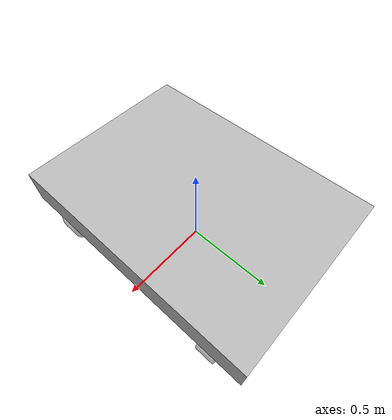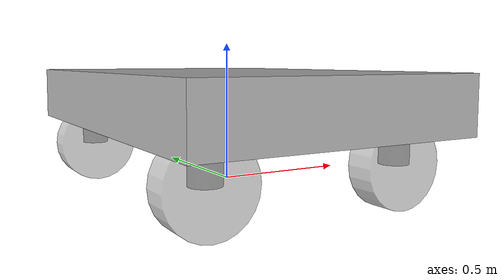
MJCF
<mujoco model="robot">
    <asset>
        <material name="aluminum" shininess="0.8" specular="0.8" reflectance="0.8" rgba="0.7 0.7 0.7 1"/>
    </asset>
    <worldbody>
        <body name="chassis" pos="0 0 0.3" euler="0 0 0">
            <joint type="free"/>
            <geom type="box" size="0.5 0.7 0.1" material="aluminum" rgba="0.7 0.7 0.7 1" density="5000"/>
            <!-- Front Left Wheel Assembly -->
            <body name="fl-module" pos="0.35 0.5 -0.1" euler="0 0 0">
                <joint name="fl-steer" type="hinge" axis="0 0 1" damping="0.2"/>
                <geom type="cylinder" size="0.05 0.1" rgba="0 0 0 1" density="3000"/>
                <body name="fl-wheel" pos="0 0 -0.1" euler="90 0 0">
                    <joint name="fl-wheel-joint" type="hinge" axis="0 0 -1" damping="0.2" limited="false"/>
                    <geom type="cylinder" size="0.15 0.05" rgba="0.8 0.8 0.8 0.8" density="3000"/>
                </body>
            </body>
            <!-- Front Right Wheel Assembly -->
            <body name="fr-module" pos="0.35 -0.5 -0.1" euler="0 0 0">
                <joint name="fr-steer" type="hinge" axis="0 0 1" damping="0.2"/>
                <geom type="cylinder" size="0.05 0.1" rgba="0 0 0 1" density="3000"/>
                <body name="fr-wheel" pos="0 0 -0.1" euler="90 0 0">
                    <joint name="fr-wheel-joint" type="hinge" axis="0 0 -1" damping="0.2" limited="false"/>
                    <geom type="cylinder" size="0.15 0.05" rgba="0.8 0.8 0.8 0.8" density="3000"/>
                </body>
            </body>
            <!-- Rear Left Wheel Assembly -->
            <body name="rl-module" pos="-0.35 0.5 -0.1" euler="0 0 0">
                <joint name="rl-steer" type="hinge" axis="0 0 1" damping="0.2"/>
                <geom type="cylinder" size="0.05 0.1" rgba="0 0 0 1" density="3000"/>
                <body name="rl-wheel" pos="0 0 -0.1" euler="90 0 0">
                    <joint name="rl-wheel-joint" type="hinge" axis="0 0 -1" damping="0.2" limited="false"/>
                    <geom type="cylinder" size="0.15 0.05" rgba="0.8 0.8 0.8 0.8" density="3000"/>
                </body>
            </body>
            <!-- Rear Right Wheel Assembly -->
            <body name="rr-module" pos="-0.35 -0.5 -0.1" euler="0 0 0">
                <joint name="rr-steer" type="hinge" axis="0 0 1" damping="0.2"/>
                <geom type="cylinder" size="0.05 0.1" rgba="0 0 0 1" density="3000"/>
                <body name="rr-wheel" pos="0 0 -0.1" euler="90 0 0">
                    <joint name="rr-wheel-joint" type="hinge" axis="0 0 -1" damping="0.2" limited="false"/>
                    <geom type="cylinder" size="0.15 0.05" rgba="0.8 0.8 0.8 0.8" density="3000"/>
                </body>
            </body>
        </body>
    </worldbody>
    <actuator>
        <position name="fl-steer-servo" joint="fl-steer" ctrlrange="-3.14 3.14" kp="3000"/>
        <position name="fr-steer-servo" joint="fr-steer" ctrlrange="-3.14 3.14" kp="3000"/>
        <position name="rl-steer-servo" joint="rl-steer" ctrlrange="-3.14 3.14" kp="3000"/>
        <position name="rr-steer-servo" joint="rr-steer" ctrlrange="-3.14 3.14" kp="3000"/>

        <velocity name="fl-wheel-servo" joint="fl-wheel-joint" kv="1200"/>
        <velocity name="fr-wheel-servo" joint="fr-wheel-joint" kv="1200"/>
        <velocity name="rl-wheel-servo" joint="rl-wheel-joint" kv="1200"/>
        <velocity name="rr-wheel-servo" joint="rr-wheel-joint" kv="1000"/>
    </actuator>
    <sensor>
        <jointvel name="fl-wheel-vel" joint="fl-wheel-joint"/>
        <jointvel name="fr-wheel-vel" joint="fr-wheel-joint"/>
        <jointvel name="rl-wheel-vel" joint="rl-wheel-joint"/>
        <jointvel name="rr-wheel-vel" joint="rr-wheel-joint"/>

        <jointpos name="fl-steer-pos" joint="fl-steer"/>
        <jointpos name="fr-steer-pos" joint="fr-steer"/>
        <jointpos name="rl-steer-pos" joint="rl-steer"/>
        <jointpos name="rr-steer-pos" joint="rr-steer"/>
    </sensor>
</mujoco>
